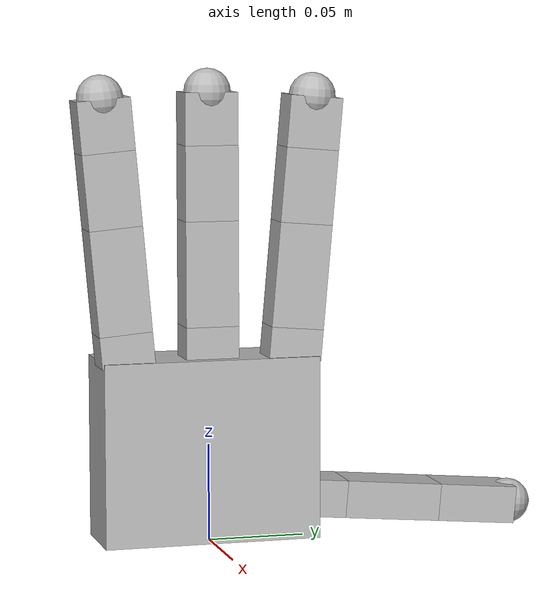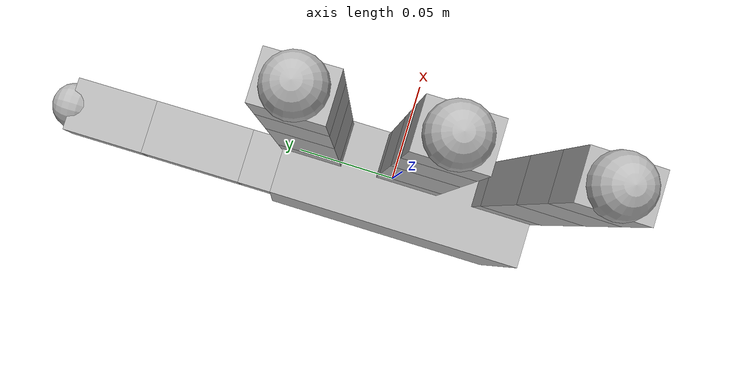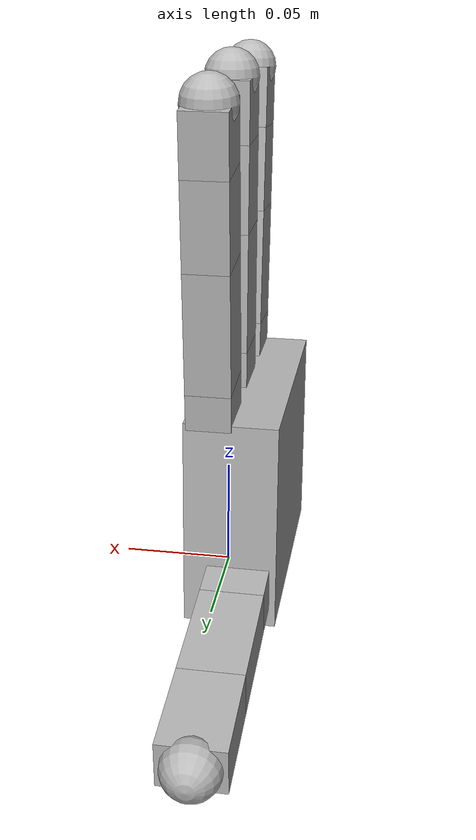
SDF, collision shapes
<?xml version="1.0"?>
<sdf version="1.7">
  <model name="allegro_hand_right">
    <link name="hand_root">
      <inertial>
        <mass>0.4154</mass>
        <inertia>
          <ixx>    2.089e-03</ixx>
          <ixy>-0.003635e-03</ixy>
          <ixz>   0.2233e-03</ixz>
          <iyy>    1.829e-03</iyy>
          <iyz> -0.01756e-03</iyz>
          <izz>   0.4825e-03</izz>
        </inertia>
      </inertial>
      <collision name="hand_root_fixed_joint_lump__palm_link_collision">
        <pose>-0.0093 0 0.0475 0 0 0</pose>
        <geometry>
          <box>
            <size>0.0408 0.113 0.095</size>
          </box>
        </geometry>
        <drake:proximity_properties>
          <drake:mesh_resolution_hint>1</drake:mesh_resolution_hint>
          <drake:mu_dynamic>1.0</drake:mu_dynamic>
          <drake:mu_dynamic>1.0</drake:mu_dynamic>
        </drake:proximity_properties>
      </collision>
      <visual name="hand_root_fixed_joint_lump__palm_link_visual">
        <pose>0 0 0.095 0 0 0</pose>
        <geometry>
          <mesh>
            <scale>1 1 1</scale>
            <uri>package://drake/manipulation/models/allegro_hand_description/meshes/base_link.obj</uri>
          </mesh>
        </geometry>
      </visual>
    </link>
    <link name="link_0">
      <pose>0 0.0435 0.093458 -0.087267 0 0</pose>
      <inertial>
        <mass>0.0119</mass>
        <inertia>
          <ixx>   1.954e-06</ixx>
          <ixy>0.003034e-06</ixy>
          <ixz> 0.08923e-06</ixz>
          <iyy>   1.179e-06</iyy>
          <iyz>-0.03707e-06</iyz>
          <izz>   1.497e-06</izz>
        </inertia>
      </inertial>
      <collision name="link_0_collision">
        <pose>0 0 0.0082 0 0 0</pose>
        <geometry>
          <box>
            <size>0.0196 0.0275 0.0164</size>
          </box>
        </geometry>
        <drake:proximity_properties>
          <drake:mesh_resolution_hint>1</drake:mesh_resolution_hint>
          <drake:mu_dynamic>1.0</drake:mu_dynamic>
          <drake:mu_dynamic>1.0</drake:mu_dynamic>
        </drake:proximity_properties>
      </collision>
      <visual name="link_0_visual">
        <geometry>
          <mesh>
            <scale>1 1 1</scale>
            <uri>package://drake/manipulation/models/allegro_hand_description/meshes/link_0.0.obj</uri>
          </mesh>
        </geometry>
      </visual>
    </link>
    <joint name="joint_0" type="revolute">
      <child>link_0</child>
      <parent>hand_root</parent>
      <axis>
        <xyz expressed_in="__model__">0 0.087156 0.996195</xyz>
        <limit>
          <lower>-0.47</lower>
          <upper>0.47</upper>
          <effort>0.7</effort>
        </limit>
        <dynamics>
          <damping>1.5e-2</damping>
        </dynamics>
      </axis>
    </joint>
    <link name="link_1">
      <pose>0 0.044929 0.109796 -0.087267 0 0</pose>
      <inertial>
        <mass>0.065</mass>
        <inertia>
          <ixx>  7.192e-05</ixx>
          <ixy>          0</ixy>
          <ixz>          0</ixz>
          <iyy>  7.438e-05</iyy>
          <iyz>0.07322e-05</iyz>
          <izz> 0.5406e-05</izz>
        </inertia>
      </inertial>
      <collision name="link_1_collision">
        <pose>0 0 0.027 0 0 0</pose>
        <geometry>
          <box>
            <size>0.0196 0.0275 0.054</size>
          </box>
        </geometry>
        <drake:proximity_properties>
          <drake:mesh_resolution_hint>1</drake:mesh_resolution_hint>
          <drake:mu_dynamic>1.0</drake:mu_dynamic>
          <drake:mu_dynamic>1.0</drake:mu_dynamic>
        </drake:proximity_properties>
      </collision>
      <visual name="link_1_visual">
        <geometry>
          <mesh>
            <scale>1 1 1</scale>
            <uri>package://drake/manipulation/models/allegro_hand_description/meshes/link_1.0.obj</uri>
          </mesh>
        </geometry>
      </visual>
    </link>
    <joint name="joint_1" type="revolute">
      <child>link_1</child>
      <parent>link_0</parent>
      <axis>
        <xyz expressed_in="__model__">0 0.996195 -0.087156</xyz>
        <limit>
          <lower>-0.196</lower>
          <upper>1.61</upper>
          <effort>0.7</effort>
        </limit>
        <dynamics>
          <damping>1.5e-2</damping>
        </dynamics>
      </axis>
    </joint>
    <link name="link_2">
      <pose>0 0.049636 0.16359 -0.087267 0 0</pose>
      <inertial>
        <mass>0.0355</mass>
        <inertia>
          <ixx>     3.169e-05</ixx>
          <ixy> 0.0001071e-05</ixy>
          <ixz>-0.0004913e-05</ixz>
          <iyy>     3.105e-05</iyy>
          <iyz>  0.003875e-05</iyz>
          <izz>    0.3203e-05</izz>
        </inertia>
      </inertial>
      <collision name="link_2_collision">
        <pose>0 0 0.0192 0 0 0</pose>
        <geometry>
          <box>
            <size>0.0196 0.0275 0.0384</size>
          </box>
        </geometry>
        <drake:proximity_properties>
          <drake:mesh_resolution_hint>1</drake:mesh_resolution_hint>
          <drake:mu_dynamic>1.0</drake:mu_dynamic>
          <drake:mu_dynamic>1.0</drake:mu_dynamic>
        </drake:proximity_properties>
      </collision>
      <visual name="link_2_visual">
        <geometry>
          <mesh>
            <scale>1 1 1</scale>
            <uri>package://drake/manipulation/models/allegro_hand_description/meshes/link_2.0.obj</uri>
          </mesh>
        </geometry>
      </visual>
    </link>
    <joint name="joint_2" type="revolute">
      <child>link_2</child>
      <parent>link_1</parent>
      <axis>
        <xyz expressed_in="__model__">0 0.996195 -0.087156</xyz>
        <limit>
          <lower>-0.174</lower>
          <upper>1.709</upper>
          <effort>0.7</effort>
        </limit>
        <dynamics>
          <damping>1.5e-2</damping>
        </dynamics>
      </axis>
    </joint>
    <link name="link_3">
      <pose>0 0.052983 0.201844 -0.087267 0 0</pose>
      <inertial>
        <mass>0.0264</mass>
        <inertia>
          <ixx>   1.263e-05</ixx>
          <ixy> 0.00021e-05</ixy>
          <ixz>-0.00098e-05</ixz>
          <iyy>   1.182e-05</iyy>
          <iyz> -0.0013e-05</iyz>
          <izz>  0.2484e-05</izz>
        </inertia>
      </inertial>
      <collision name="link_3_collision">
        <pose>0 0 0.01335 0 0 0</pose>
        <geometry>
          <box>
            <size>0.0196 0.0275 0.0267</size>
          </box>
        </geometry>
        <drake:proximity_properties>
          <drake:mesh_resolution_hint>1</drake:mesh_resolution_hint>
          <drake:mu_dynamic>1.0</drake:mu_dynamic>
          <drake:mu_dynamic>1.0</drake:mu_dynamic>
        </drake:proximity_properties>
      </collision>
      <collision name="link_3_tip_collision_1">
        <pose>0 0 0.0267 0 0 0</pose>
        <geometry>
          <sphere>
            <radius>0.012</radius>
          </sphere>
        </geometry>
        <drake:proximity_properties>
          <drake:mesh_resolution_hint>0.006</drake:mesh_resolution_hint>
          <drake:mu_dynamic>1.0</drake:mu_dynamic>
          <drake:mu_dynamic>1.0</drake:mu_dynamic>
        </drake:proximity_properties>
      </collision>
      <visual name="link_3_visual">
        <geometry>
          <mesh>
            <scale>1 1 1</scale>
            <uri>package://drake/manipulation/models/allegro_hand_description/meshes/link_3.0.obj</uri>
          </mesh>
        </geometry>
      </visual>
      <visual name="link_3_tip_visual_1">
        <pose>0 0 0.0267 0 0 0</pose>
        <geometry>
          <mesh>
            <scale>1 1 1</scale>
            <uri>package://drake/manipulation/models/allegro_hand_description/meshes/link_3.0_tip.obj</uri>
          </mesh>
        </geometry>
      </visual>
    </link>
    <joint name="joint_3" type="revolute">
      <child>link_3</child>
      <parent>link_2</parent>
      <axis>
        <xyz expressed_in="__model__">0 0.996195 -0.087156</xyz>
        <limit>
          <lower>-0.227</lower>
          <upper>1.618</upper>
          <effort>0.7</effort>
        </limit>
        <dynamics>
          <damping>1.5e-2</damping>
        </dynamics>
      </axis>
    </joint>
    <link name="link_12">
      <pose>-0.0182 0.019333 0.049013 3.14159 -1.48353 1.5708</pose>
      <inertial>
        <mass>0.0176</mass>
        <inertia>
          <ixx> 0.8139e-05</ixx>
          <ixy> 0.2552e-05</ixy>
          <ixz> 0.3899e-05</ixz>
          <iyy>  1.314e-05</iyy>
          <iyz>-0.1463e-05</iyz>
          <izz>  1.002e-05</izz>
        </inertia>
      </inertial>
      <collision name="link_12_collision">
        <pose>-0.0179 0.009 0.0145 0 0 0</pose>
        <geometry>
          <box>
            <size>0.0358 0.034 0.0455</size>
          </box>
        </geometry>
                <drake:proximity_properties>
          <drake:mesh_resolution_hint>1</drake:mesh_resolution_hint>
          <drake:mu_dynamic>1.0</drake:mu_dynamic>
          <drake:mu_dynamic>1.0</drake:mu_dynamic>
        </drake:proximity_properties>
      </collision>
      <visual name="link_12_visual">
        <geometry>
          <mesh>
            <scale>1 1 1</scale>
            <uri>package://drake/manipulation/models/allegro_hand_description/meshes/link_12.0_right.obj</uri>
          </mesh>
        </geometry>
      </visual>
    </link>
    <joint name="joint_12" type="revolute">
      <child>link_12</child>
      <parent>hand_root</parent>
      <axis>
        <xyz expressed_in="__model__">0 -0.087156 -0.996195</xyz>
        <limit>
          <lower>0.263</lower>
          <upper>1.396</upper>
          <effort>0.7</effort>
        </limit>
        <dynamics>
          <damping>1.5e-2</damping>
        </dynamics>
      </axis>
    </joint>
    <link name="link_13">
      <pose>-0.0132 0.056728 0.018638 3.14159 -1.48353 1.5708</pose>
      <inertial>
        <mass>0.0119</mass>
        <inertia>
          <ixx>   1.926e-06</ixx>
          <ixy> 0.00305e-06</ixy>
          <ixz> 0.08866e-06</ixz>
          <iyy>   1.153e-06</iyy>
          <iyz>-0.03645e-06</iyz>
          <izz>   1.496e-06</izz>
        </inertia>
      </inertial>
      <collision name='link_13_collision'>
        <pose>0 0 0.00885 0 0 0</pose>
        <geometry>
          <box>
            <size>0.0196 0.0275 0.0177</size>
          </box>
        </geometry>
        <drake:proximity_properties>
          <drake:mesh_resolution_hint>1</drake:mesh_resolution_hint>
          <drake:mu_dynamic>1.0</drake:mu_dynamic>
          <drake:mu_dynamic>1.0</drake:mu_dynamic>
        </drake:proximity_properties>
      </collision>
      <visual name="link_13_visual">
        <geometry>
          <mesh>
            <scale>1 1 1</scale>
            <uri>package://drake/manipulation/models/allegro_hand_description/meshes/link_13.0.obj</uri>
          </mesh>
        </geometry>
      </visual>
    </link>
    <joint name="joint_13" type="revolute">
      <child>link_13</child>
      <parent>link_12</parent>
      <axis>
        <xyz expressed_in="__model__">0 0.996195 -0.087156</xyz>
        <limit>
          <lower>-0.105</lower>
          <upper>1.163</upper>
          <effort>0.7</effort>
        </limit>
        <dynamics>
          <damping>1.5e-2</damping>
        </dynamics>
      </axis>
    </joint>
    <link name="link_14">
      <pose>-0.0132 0.074361 0.017096 3.14159 -1.48353 1.5708</pose>
      <inertial>
        <mass>0.038</mass>
        <inertia>
          <ixx>  3.670e-05</ixx>
          <ixy> 0.0001e-05</ixy>
          <ixz>0.01485e-05</ixz>
          <iyy>  3.540e-05</iyy>
          <iyz>-0.0037e-05</iyz>
          <izz> 0.3633e-05</izz>
        </inertia>
      </inertial>
      <collision name="link_14_collision">
        <pose>0 0 0.0257 0 0 0</pose>
        <geometry>
          <box>
            <size>0.0196 0.0275 0.0514</size>
          </box>
        </geometry>
                <drake:proximity_properties>
          <drake:mesh_resolution_hint>1</drake:mesh_resolution_hint>
          <drake:mu_dynamic>1.0</drake:mu_dynamic>
          <drake:mu_dynamic>1.0</drake:mu_dynamic>
        </drake:proximity_properties>
      </collision>
      <visual name="link_14_visual">
        <geometry>
          <mesh>
            <scale>1 1 1</scale>
            <uri>package://drake/manipulation/models/allegro_hand_description/meshes/link_14.0.obj</uri>
          </mesh>
        </geometry>
      </visual>
    </link>
    <joint name="joint_14" type="revolute">
      <child>link_14</child>
      <parent>link_13</parent>
      <axis>
        <xyz expressed_in="__model__">1 0 0</xyz>
        <limit>
          <lower>-0.189</lower>
          <upper>1.644</upper>
          <effort>0.7</effort>
        </limit>
        <dynamics>
          <damping>1.5e-2</damping>
        </dynamics>
      </axis>
    </joint>
    <link name="link_15">
      <pose>-0.0132 0.125565 0.012616 3.14159 -1.48353 1.5708</pose>
      <inertial>
        <pose>0 0 0.012781 0 0 0</pose>
        <mass>0.0556</mass>
        <inertia>
          <ixx>  7.054e-05</ixx>
          <ixy>          0</ixy>
          <ixz>          0</ixz>
          <iyy>  6.564e-05</iyy>
          <iyz>-0.0033e-05</iyz>
          <izz>  1.954e-05</izz>
        </inertia>
      </inertial>
      <collision name="link_15_collision">
        <pose>0 0 0.02115 0 0 0</pose>
        <geometry>
          <box>
            <size>0.0196 0.0275 0.0423</size>
          </box>
        </geometry>
                <drake:proximity_properties>
          <drake:mesh_resolution_hint>1</drake:mesh_resolution_hint>
          <drake:mu_dynamic>1.0</drake:mu_dynamic>
          <drake:mu_dynamic>1.0</drake:mu_dynamic>
        </drake:proximity_properties>
      </collision>
      <collision name="link_15_tip_collision_1">
        <pose>0 0 0.0423 0 0 0</pose>
        <geometry>
          <sphere>
            <radius>0.012</radius>
          </sphere>
        </geometry>
        <drake:proximity_properties>
          <drake:mesh_resolution_hint>0.006</drake:mesh_resolution_hint>
          <drake:mu_dynamic>1.0</drake:mu_dynamic>
          <drake:mu_dynamic>1.0</drake:mu_dynamic>
        </drake:proximity_properties>
      </collision>
      <visual name="link_15_visual">
        <geometry>
          <mesh>
            <scale>1 1 1</scale>
            <uri>package://drake/manipulation/models/allegro_hand_description/meshes/link_15.0.obj</uri>
          </mesh>
        </geometry>
      </visual>
      <visual name="link_15_tip_visual_1">
        <pose>0 0 0.0423 0 0 0</pose>
        <geometry>
          <mesh>
            <scale>1 1 1</scale>
            <uri>package://drake/manipulation/models/allegro_hand_description/meshes/link_15.0_tip.obj</uri>
          </mesh>
        </geometry>
      </visual>
    </link>
    <joint name="joint_15" type="revolute">
      <child>link_15</child>
      <parent>link_14</parent>
      <axis>
        <xyz expressed_in="__model__">1 0 0</xyz>
        <limit>
          <lower>-0.162</lower>
          <upper>1.719</upper>
          <effort>0.7</effort>
        </limit>
        <dynamics>
          <damping>1.5e-2</damping>
        </dynamics>
      </axis>
    </joint>
    <link name="link_4">
      <pose>0 0 0.0957 0 0 0</pose>
      <inertial>
        <mass>0.0119</mass>
        <inertia>
          <ixx>   1.954e-06</ixx>
          <ixy>0.003034e-06</ixy>
          <ixz> 0.08923e-06</ixz>
          <iyy>   1.179e-06</iyy>
          <iyz>-0.03707e-06</iyz>
          <izz>   1.497e-06</izz>
        </inertia>
      </inertial>
      <collision name="link_4_collision">
        <pose>0 0 0.0082 0 0 0</pose>
        <geometry>
          <box>
            <size>0.0196 0.0275 0.0164</size>
          </box>
        </geometry>
                <drake:proximity_properties>
          <drake:mesh_resolution_hint>1</drake:mesh_resolution_hint>
          <drake:mu_dynamic>1.0</drake:mu_dynamic>
          <drake:mu_dynamic>1.0</drake:mu_dynamic>
        </drake:proximity_properties>
      </collision>
      <visual name="link_4_visual">
        <geometry>
          <mesh>
            <scale>1 1 1</scale>
            <uri>package://drake/manipulation/models/allegro_hand_description/meshes/link_0.0.obj</uri>
          </mesh>
        </geometry>
      </visual>
    </link>
    <joint name="joint_4" type="revolute">
      <child>link_4</child>
      <parent>hand_root</parent>
      <axis>
        <xyz expressed_in="__model__">0 0 1</xyz>
        <limit>
          <lower>-0.47</lower>
          <upper>0.47</upper>
          <effort>0.7</effort>
        </limit>
        <dynamics>
          <damping>1.5e-2</damping>
        </dynamics>
      </axis>
    </joint>
    <link name="link_5">
      <pose>0 0 0.1121 0 0 0</pose>
      <inertial>
        <mass>0.065</mass>
        <inertia>
          <ixx>  7.192e-05</ixx>
          <ixy>          0</ixy>
          <ixz>          0</ixz>
          <iyy>  7.438e-05</iyy>
          <iyz>0.07322e-05</iyz>
          <izz> 0.5406e-05</izz>
        </inertia>
      </inertial>
      <collision name="link_5_collision">
        <pose>0 0 0.027 0 0 0</pose>
        <geometry>
          <box>
            <size>0.0196 0.0275 0.054</size>
          </box>
        </geometry>
                <drake:proximity_properties>
          <drake:mesh_resolution_hint>1</drake:mesh_resolution_hint>
          <drake:mu_dynamic>1.0</drake:mu_dynamic>
          <drake:mu_dynamic>1.0</drake:mu_dynamic>
        </drake:proximity_properties>
      </collision>
      <visual name="link_5_visual">
        <geometry>
          <mesh>
            <scale>1 1 1</scale>
            <uri>package://drake/manipulation/models/allegro_hand_description/meshes/link_1.0.obj</uri>
          </mesh>
        </geometry>
      </visual>
    </link>
    <joint name="joint_5" type="revolute">
      <child>link_5</child>
      <parent>link_4</parent>
      <axis>
        <xyz expressed_in="__model__">0 1 0</xyz>
        <limit>
          <lower>-0.196</lower>
          <upper>1.61</upper>
          <effort>0.7</effort>
        </limit>
        <dynamics>
          <damping>1.5e-2</damping>
        </dynamics>
      </axis>
    </joint>
    <link name="link_6">
      <pose>0 0 0.1661 0 0 0</pose>
      <inertial>
        <mass>0.0355</mass>
        <inertia>
          <ixx>     3.169e-05</ixx>
          <ixy> 0.0001071e-05</ixy>
          <ixz>-0.0004913e-05</ixz>
          <iyy>     3.105e-05</iyy>
          <iyz>  0.003875e-05</iyz>
          <izz>    0.3203e-05</izz>
        </inertia>
      </inertial>
      <collision name="link_6_collision">
        <pose>0 0 0.0192 0 0 0</pose>
        <geometry>
          <box>
            <size>0.0196 0.0275 0.0384</size>
          </box>
        </geometry>
                <drake:proximity_properties>
          <drake:mesh_resolution_hint>1</drake:mesh_resolution_hint>
          <drake:mu_dynamic>1.0</drake:mu_dynamic>
          <drake:mu_dynamic>1.0</drake:mu_dynamic>
        </drake:proximity_properties>
      </collision>
      <visual name="link_6_visual">
        <geometry>
          <mesh>
            <scale>1 1 1</scale>
            <uri>package://drake/manipulation/models/allegro_hand_description/meshes/link_2.0.obj</uri>
          </mesh>
        </geometry>
      </visual>
    </link>
    <joint name="joint_6" type="revolute">
      <child>link_6</child>
      <parent>link_5</parent>
      <axis>
        <xyz expressed_in="__model__">0 1 0</xyz>
        <limit>
          <lower>-0.174</lower>
          <upper>1.709</upper>
          <effort>0.7</effort>
        </limit>
        <dynamics>
          <damping>1.5e-2</damping>
        </dynamics>
      </axis>
    </joint>
    <link name="link_7">
      <pose>0 0 0.2045 0 0 0</pose>
      <inertial>
        <mass>0.0264</mass>
        <inertia>
          <ixx>   1.263e-05</ixx>
          <ixy> 0.00021e-05</ixy>
          <ixz>-0.00098e-05</ixz>
          <iyy>   1.182e-05</iyy>
          <iyz> -0.0013e-05</iyz>
          <izz>  0.2484e-05</izz>
        </inertia>
      </inertial>
      <collision name="link_7_collision">
        <pose>0 0 0.01335 0 0 0</pose>
        <geometry>
          <box>
            <size>0.0196 0.0275 0.0267</size>
          </box>
        </geometry>
                <drake:proximity_properties>
          <drake:mesh_resolution_hint>1</drake:mesh_resolution_hint>
          <drake:mu_dynamic>1.0</drake:mu_dynamic>
          <drake:mu_dynamic>1.0</drake:mu_dynamic>
        </drake:proximity_properties>
      </collision>
      <collision name="link_7_tip_collision_1">
        <pose>0 0 0.0267 0 0 0</pose>
        <geometry>
          <sphere>
            <radius>0.012</radius>
          </sphere>
        </geometry>
                <drake:proximity_properties>
          <drake:mesh_resolution_hint>0.006</drake:mesh_resolution_hint>
          <drake:mu_dynamic>1.0</drake:mu_dynamic>
          <drake:mu_dynamic>1.0</drake:mu_dynamic>
        </drake:proximity_properties>
      </collision>
      <visual name="link_7_visual">
        <geometry>
          <mesh>
            <scale>1 1 1</scale>
            <uri>package://drake/manipulation/models/allegro_hand_description/meshes/link_3.0.obj</uri>
          </mesh>
        </geometry>
      </visual>
      <visual name="link_7_tip_visual_1">
        <pose>0 0 0.0267 0 0 0</pose>
        <geometry>
          <mesh>
            <scale>1 1 1</scale>
            <uri>package://drake/manipulation/models/allegro_hand_description/meshes/link_3.0_tip.obj</uri>
          </mesh>
        </geometry>
      </visual>
    </link>
    <joint name="joint_7" type="revolute">
      <child>link_7</child>
      <parent>link_6</parent>
      <axis>
        <xyz expressed_in="__model__">0 1 0</xyz>
        <limit>
          <lower>-0.227</lower>
          <upper>1.618</upper>
          <effort>0.7</effort>
        </limit>
        <dynamics>
          <damping>1.5e-2</damping>
        </dynamics>
      </axis>
    </joint>
    <link name="link_8">
      <pose>0 -0.0435 0.093458 0.087267 0 0</pose>
      <inertial>
        <mass>0.0119</mass>
        <inertia>
          <ixx>   1.954e-06</ixx>
          <ixy>0.003034e-06</ixy>
          <ixz> 0.08923e-06</ixz>
          <iyy>   1.179e-06</iyy>
          <iyz>-0.03707e-06</iyz>
          <izz>   1.497e-06</izz>
        </inertia>
      </inertial>
      <collision name="link_8_collision">
        <pose>0 0 0.0082 0 0 0</pose>
        <geometry>
          <box>
            <size>0.0196 0.0275 0.0164</size>
          </box>
        </geometry>
                <drake:proximity_properties>
          <drake:mesh_resolution_hint>1</drake:mesh_resolution_hint>
          <drake:mu_dynamic>1.0</drake:mu_dynamic>
          <drake:mu_dynamic>1.0</drake:mu_dynamic>
        </drake:proximity_properties>
      </collision>
      <visual name="link_8_visual">
        <geometry>
          <mesh>
            <scale>1 1 1</scale>
            <uri>package://drake/manipulation/models/allegro_hand_description/meshes/link_0.0.obj</uri>
          </mesh>
        </geometry>
      </visual>
    </link>
    <joint name="joint_8" type="revolute">
      <child>link_8</child>
      <parent>hand_root</parent>
      <axis>
        <xyz expressed_in="__model__">0 -0.087156 0.996195</xyz>
        <limit>
          <lower>-0.47</lower>
          <upper>0.47</upper>
          <effort>0.7</effort>
        </limit>
        <dynamics>
          <damping>1.5e-2</damping>
        </dynamics>
      </axis>
    </joint>
    <link name="link_9">
      <pose>0 -0.044929 0.109796 0.087267 0 0</pose>
      <inertial>
        <mass>0.065</mass>
        <inertia>
          <ixx>  7.192e-05</ixx>
          <ixy>          0</ixy>
          <ixz>          0</ixz>
          <iyy>  7.438e-05</iyy>
          <iyz>0.07322e-05</iyz>
          <izz> 0.5406e-05</izz>
        </inertia>
      </inertial>
      <collision name="link_9_collision">
        <pose>0 0 0.027 0 0 0</pose>
        <geometry>
          <box>
            <size>0.0196 0.0275 0.054</size>
          </box>
        </geometry>
                <drake:proximity_properties>
          <drake:mesh_resolution_hint>1</drake:mesh_resolution_hint>
          <drake:mu_dynamic>1.0</drake:mu_dynamic>
          <drake:mu_dynamic>1.0</drake:mu_dynamic>
        </drake:proximity_properties>
      </collision>
      <visual name="link_9_visual">
        <geometry>
          <mesh>
            <scale>1 1 1</scale>
            <uri>package://drake/manipulation/models/allegro_hand_description/meshes/link_1.0.obj</uri>
          </mesh>
        </geometry>
      </visual>
    </link>
    <joint name="joint_9" type="revolute">
      <child>link_9</child>
      <parent>link_8</parent>
      <axis>
        <xyz expressed_in="__model__">0 0.996195 0.087156</xyz>
        <limit>
          <lower>-0.196</lower>
          <upper>1.61</upper>
          <effort>0.7</effort>
        </limit>
        <dynamics>
          <damping>1.5e-2</damping>
        </dynamics>
      </axis>
    </joint>
    <link name="link_10">
      <pose>0 -0.049636 0.16359 0.087267 0 0</pose>
      <inertial>
        <mass>0.0355</mass>
        <inertia>
          <ixx>     3.169e-05</ixx>
          <ixy> 0.0001071e-05</ixy>
          <ixz>-0.0004913e-05</ixz>
          <iyy>     3.105e-05</iyy>
          <iyz>  0.003875e-05</iyz>
          <izz>    0.3203e-05</izz>
        </inertia>
      </inertial>
      <collision name="link_10_collision">
        <pose>0 0 0.0192 0 0 0</pose>
        <geometry>
          <box>
            <size>0.0196 0.0275 0.0384</size>
          </box>
        </geometry>
                <drake:proximity_properties>
          <drake:mesh_resolution_hint>1</drake:mesh_resolution_hint>
          <drake:mu_dynamic>1.0</drake:mu_dynamic>
          <drake:mu_dynamic>1.0</drake:mu_dynamic>
        </drake:proximity_properties>
      </collision>
      <visual name="link_10_visual">
        <geometry>
          <mesh>
            <scale>1 1 1</scale>
            <uri>package://drake/manipulation/models/allegro_hand_description/meshes/link_2.0.obj</uri>
          </mesh>
        </geometry>
      </visual>
    </link>
    <joint name="joint_10" type="revolute">
      <child>link_10</child>
      <parent>link_9</parent>
      <axis>
        <xyz expressed_in="__model__">0 0.996195 0.087156</xyz>
        <limit>
          <lower>-0.174</lower>
          <upper>1.709</upper>
          <effort>0.7</effort>
        </limit>
        <dynamics>
          <damping>1.5e-2</damping>
        </dynamics>
      </axis>
    </joint>
    <link name="link_11">
      <pose>0 -0.052983 0.201844 0.087267 0 0</pose>
      <inertial>
        <mass>0.0264</mass>
        <inertia>
          <ixx>   1.263e-05</ixx>
          <ixy> 0.00021e-05</ixy>
          <ixz>-0.00098e-05</ixz>
          <iyy>   1.182e-05</iyy>
          <iyz> -0.0013e-05</iyz>
          <izz>  0.2484e-05</izz>
        </inertia>
      </inertial>
      <collision name="link_11_collision">
        <pose>0 0 0.01335 0 0 0</pose>
        <geometry>
          <box>
            <size>0.0196 0.0275 0.0267</size>
          </box>
        </geometry>
                <drake:proximity_properties>
          <drake:mesh_resolution_hint>1</drake:mesh_resolution_hint>
          <drake:mu_dynamic>1.0</drake:mu_dynamic>
          <drake:mu_dynamic>1.0</drake:mu_dynamic>
        </drake:proximity_properties>
      </collision>
      <collision name="link_11_tip_collision_1">
        <pose>0 0 0.0267 0 0 0</pose>
        <geometry>
          <sphere>
            <radius>0.012</radius>
          </sphere>
        </geometry>
                <drake:proximity_properties>
          <drake:mesh_resolution_hint>0.006</drake:mesh_resolution_hint>
          <drake:mu_dynamic>1.0</drake:mu_dynamic>
          <drake:mu_dynamic>1.0</drake:mu_dynamic>
        </drake:proximity_properties>
      </collision>
      <visual name="link_11_visual">
        <geometry>
          <mesh>
            <scale>1 1 1</scale>
            <uri>package://drake/manipulation/models/allegro_hand_description/meshes/link_3.0.obj</uri>
          </mesh>
        </geometry>
      </visual>
      <visual name="link_11_tip_visual_1">
        <pose>0 0 0.0267 0 0 0</pose>
        <geometry>
          <mesh>
            <scale>1 1 1</scale>
            <uri>package://drake/manipulation/models/allegro_hand_description/meshes/link_3.0_tip.obj</uri>
          </mesh>
        </geometry>
      </visual>
    </link>
    <joint name="joint_11" type="revolute">
      <child>link_11</child>
      <parent>link_10</parent>
      <axis>
        <xyz expressed_in="__model__">0 0.996195 0.087156</xyz>
        <limit>
          <lower>-0.227</lower>
          <upper>1.618</upper>
          <effort>0.7</effort>
        </limit>
        <dynamics>
          <damping>1.5e-2</damping>
        </dynamics>
      </axis>
    </joint>
  </model>
</sdf>
